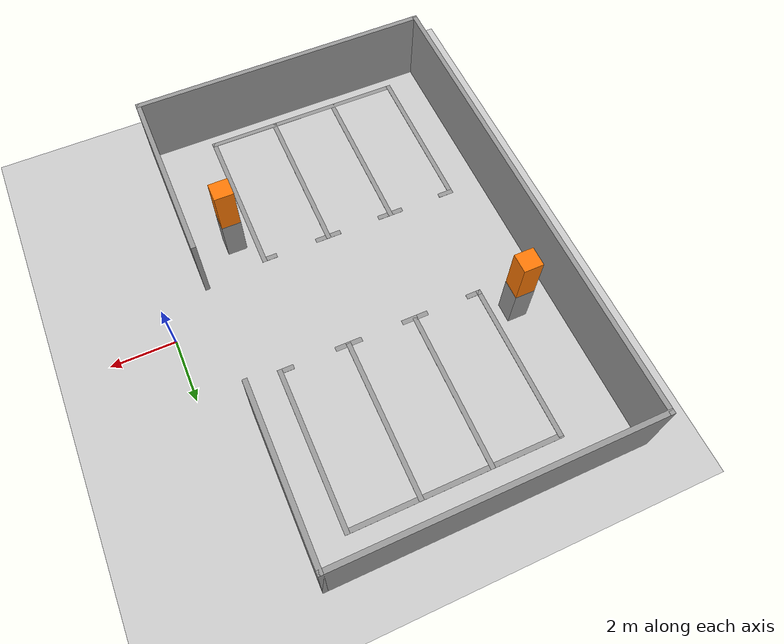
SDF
<sdf version="1.7">
 <world name="default">
  <light name="sun" type="directional">
   <pose>0 0 10 0 -0 0</pose>
   <diffuse>0.8 0.8 0.8 1</diffuse>
   <specular>0.2 0.2 0.2 1</specular>
   <attenuation>
    <range>1000</range>
    <constant>0.9</constant>
    <linear>0.01</linear>
    <quadratic>0.001</quadratic>
   </attenuation>
   <direction>-0.5 0.1 -0.9</direction>
   <spot><inner_angle>0</inner_angle><outer_angle>0</outer_angle><falloff>0</falloff></spot>
  </light>
  <model name="ground_plane">
   <static>1</static>
   <link name="link">
    <collision name="collision">
     <geometry><plane><normal>0 0 1</normal><size>100 100</size></plane></geometry>
     <surface><friction><ode><mu>100</mu><mu2>50</mu2></ode></friction></surface>
    </collision>
    <visual name="visual">
     <cast_shadows>0</cast_shadows>
     <geometry><plane><normal>0 0 1</normal><size>100 100</size></plane></geometry>
     <material>
      <script><uri>file://media/materials/scripts/gazebo.material</uri><name>Gazebo/Grey</name></script>
     </material>
    </visual>
   </link>
  </model>
  <gravity>0 0 -9.8</gravity>
  <magnetic_field>6e-06 2.3e-05 -4.2e-05</magnetic_field>
  <atmosphere type="adiabatic"/>
  <physics type="ode">
   <max_step_size>0.001</max_step_size>
   <real_time_factor>1</real_time_factor>
   <real_time_update_rate>1000</real_time_update_rate>
  </physics>
  <scene><ambient>0.4 0.4 0.4 1</ambient><background>0.7 0.7 0.7 1</background><shadows>1</shadows></scene>
  <audio><device>default</device></audio>
  <spherical_coordinates>
   <surface_model>EARTH_WGS84</surface_model>
   <latitude_deg>0</latitude_deg>
   <longitude_deg>0</longitude_deg>
   <elevation>0</elevation>
   <heading_deg>0</heading_deg>
  </spherical_coordinates>
  <model name="carport1">
   <pose>-6.20477 6.33377 0 0 -0 0</pose>
   <link name="Wall_105">
    <collision name="Wall_105_Collision">
     <geometry><box><size>0.61 0.6 1.5</size></box></geometry>
     <pose>0 0 0.75 0 -0 0</pose>
    </collision>
    <visual name="Wall_105_Visual">
     <pose>0 0 0.75 0 -0 0</pose>
     <geometry><box><size>0.61 0.6 1.5</size></box></geometry>
     <material>
      <script><uri>file://media/materials/scripts/gazebo.material</uri><name>Gazebo/Grey</name></script>
      <ambient>1 1 1 1</ambient>
     </material>
     <meta><layer>0</layer></meta>
    </visual>
    <pose>-3.47407 -3.2865 0 0 -0 0</pose>
   </link>
   <link name="Wall_116">
    <collision name="Wall_116_Collision">
     <geometry><box><size>5.1 0.15 0.005</size></box></geometry>
     <pose>0 0 0.0025 0 -0 0</pose>
    </collision>
    <visual name="Wall_116_Visual">
     <pose>0 0 0.0025 0 -0 0</pose>
     <geometry><box><size>5.1 0.15 0.005</size></box></geometry>
     <material>
      <script><uri>file://media/materials/scripts/gazebo.material</uri><name>Gazebo/Grey</name></script>
      <ambient>1 1 1 1</ambient>
     </material>
     <meta><layer>0</layer></meta>
    </visual>
    <pose>-2.82307 -1.7385 0 0 -0 1.5708</pose>
   </link>
   <link name="Wall_124">
    <collision name="Wall_124_Collision">
     <geometry><box><size>5.1 0.15 0.005</size></box></geometry>
     <pose>0 0 0.0025 0 -0 0</pose>
    </collision>
    <visual name="Wall_124_Visual">
     <pose>0 0 0.0025 0 -0 0</pose>
     <geometry><box><size>5.1 0.15 0.005</size></box></geometry>
     <material>
      <script><uri>file://media/materials/scripts/gazebo.material</uri><name>Gazebo/Grey</name></script>
      <ambient>1 1 1 1</ambient>
     </material>
     <meta><layer>0</layer></meta>
    </visual>
    <pose>3.70393 -1.7305 0 0 -0 1.5708</pose>
   </link>
   <link name="Wall_146">
    <collision name="Wall_146_Collision">
     <geometry><box><size>6.67711 0.15 0.005</size></box></geometry>
     <pose>0 0 0.0025 0 -0 0</pose>
    </collision>
    <visual name="Wall_146_Visual">
     <pose>0 0 0.0025 0 -0 0</pose>
     <geometry><box><size>6.67711 0.15 0.005</size></box></geometry>
     <material>
      <script><uri>file://media/materials/scripts/gazebo.material</uri><name>Gazebo/Grey</name></script>
      <ambient>1 1 1 1</ambient>
     </material>
     <meta><layer>0</layer></meta>
    </visual>
    <pose>0.440428 0.7405 0 0 -0 0.001226</pose>
   </link>
   <link name="Wall_168">
    <collision name="Wall_168_Collision">
     <geometry><box><size>5.1 0.15 0.005</size></box></geometry>
     <pose>0 0 0.0025 0 -0 0</pose>
    </collision>
    <visual name="Wall_168_Visual">
     <pose>0 0 0.0025 0 -0 0</pose>
     <geometry><box><size>5.1 0.15 0.005</size></box></geometry>
     <material>
      <script><uri>file://media/materials/scripts/gazebo.material</uri><name>Gazebo/Grey</name></script>
      <ambient>1 1 1 1</ambient>
     </material>
     <meta><layer>0</layer></meta>
    </visual>
    <pose>-0.64827 -1.73839 0 0 -0 1.57088</pose>
   </link>
   <link name="Wall_173">
    <collision name="Wall_173_Collision">
     <geometry><box><size>5.1 0.15 0.005</size></box></geometry>
     <pose>0 0 0.0025 0 -0 0</pose>
    </collision>
    <visual name="Wall_173_Visual">
     <pose>0 0 0.0025 0 -0 0</pose>
     <geometry><box><size>5.1 0.15 0.005</size></box></geometry>
     <material>
      <script><uri>file://media/materials/scripts/gazebo.material</uri><name>Gazebo/Grey</name></script>
      <ambient>1 1 1 1</ambient>
     </material>
     <meta><layer>0</layer></meta>
    </visual>
    <pose>1.52673 -1.73839 0 0 -0 1.57088</pose>
   </link>
   <link name="Wall_177">
    <collision name="Wall_177_Collision">
     <geometry><box><size>0.6 0.59 3</size></box></geometry>
     <pose>0 0 1.5 0 -0 0</pose>
    </collision>
    <visual name="Wall_177_Visual">
     <pose>0 0 1.5 0 -0 0</pose>
     <geometry><box><size>0.6 0.59 3</size></box></geometry>
     <material>
      <script><uri>file://media/materials/scripts/gazebo.material</uri><name>Gazebo/Grey</name></script>
      <ambient>0.996078 0.47451 0.0196078 1</ambient>
     </material>
     <meta><layer>0</layer></meta>
    </visual>
    <pose>-3.47407 -3.2865 0 0 -0 0</pose>
   </link>
   <link name="Wall_179">
    <collision name="Wall_179_Collision">
     <geometry><box><size>0.5 0.15 0.005</size></box></geometry>
     <pose>0 0 0.0025 0 -0 0</pose>
    </collision>
    <visual name="Wall_179_Visual">
     <pose>0 0 0.0025 0 -0 0</pose>
     <geometry><box><size>0.5 0.15 0.005</size></box></geometry>
     <material>
      <script><uri>file://media/materials/scripts/gazebo.material</uri><name>Gazebo/Grey</name></script>
      <ambient>1 1 1 1</ambient>
     </material>
     <meta><layer>0</layer></meta>
    </visual>
    <pose>-2.64807 -4.2135 0 0 -0 0</pose>
   </link>
   <link name="Wall_181">
    <collision name="Wall_181_Collision">
     <geometry><box><size>0.5 0.15 0.005</size></box></geometry>
     <pose>0 0 0.0025 0 -0 0</pose>
    </collision>
    <visual name="Wall_181_Visual">
     <pose>0 0 0.0025 0 -0 0</pose>
     <geometry><box><size>0.5 0.15 0.005</size></box></geometry>
     <material>
      <script><uri>file://media/materials/scripts/gazebo.material</uri><name>Gazebo/Grey</name></script>
      <ambient>1 1 1 1</ambient>
     </material>
     <meta><layer>0</layer></meta>
    </visual>
    <pose>-0.823072 -4.2135 0 0 -0 3.14159</pose>
   </link>
   <link name="Wall_183">
    <collision name="Wall_183_Collision">
     <geometry><box><size>0.5 0.15 0.005</size></box></geometry>
     <pose>0 0 0.0025 0 -0 0</pose>
    </collision>
    <visual name="Wall_183_Visual">
     <pose>0 0 0.0025 0 -0 0</pose>
     <geometry><box><size>0.5 0.15 0.005</size></box></geometry>
     <material>
      <script><uri>file://media/materials/scripts/gazebo.material</uri><name>Gazebo/Grey</name></script>
      <ambient>1 1 1 1</ambient>
     </material>
     <meta><layer>0</layer></meta>
    </visual>
    <pose>-0.473072 -4.2135 0 0 -0 0</pose>
   </link>
   <link name="Wall_185">
    <collision name="Wall_185_Collision">
     <geometry><box><size>0.5 0.15 0.005</size></box></geometry>
     <pose>0 0 0.0025 0 -0 0</pose>
    </collision>
    <visual name="Wall_185_Visual">
     <pose>0 0 0.0025 0 -0 0</pose>
     <geometry><box><size>0.5 0.15 0.005</size></box></geometry>
     <material>
      <script><uri>file://media/materials/scripts/gazebo.material</uri><name>Gazebo/Grey</name></script>
      <ambient>1 1 1 1</ambient>
     </material>
     <meta><layer>0</layer></meta>
    </visual>
    <pose>1.35193 -4.2135 0 0 -0 3.14159</pose>
   </link>
   <link name="Wall_187">
    <collision name="Wall_187_Collision">
     <geometry><box><size>0.5 0.15 0.005</size></box></geometry>
     <pose>0 0 0.0025 0 -0 0</pose>
    </collision>
    <visual name="Wall_187_Visual">
     <pose>0 0 0.0025 0 -0 0</pose>
     <geometry><box><size>0.5 0.15 0.005</size></box></geometry>
     <material>
      <script><uri>file://media/materials/scripts/gazebo.material</uri><name>Gazebo/Grey</name></script>
      <ambient>1 1 1 1</ambient>
     </material>
     <meta><layer>0</layer></meta>
    </visual>
    <pose>1.70193 -4.2135 0 0 -0 0</pose>
   </link>
   <link name="Wall_189">
    <collision name="Wall_189_Collision">
     <geometry><box><size>0.5 0.15 0.005</size></box></geometry>
     <pose>0 0 0.0025 0 -0 0</pose>
    </collision>
    <visual name="Wall_189_Visual">
     <pose>0 0 0.0025 0 -0 0</pose>
     <geometry><box><size>0.5 0.15 0.005</size></box></geometry>
     <material>
      <script><uri>file://media/materials/scripts/gazebo.material</uri><name>Gazebo/Grey</name></script>
      <ambient>1 1 1 1</ambient>
     </material>
     <meta><layer>0</layer></meta>
    </visual>
    <pose>3.52893 -4.2055 0 0 -0 3.14159</pose>
   </link>
   <static>1</static>
  </model>
  <model name="carport1_clone_1">
   <pose>-6.21435 -5.82324 0 0 -0 3.13851</pose>
   <link name="Wall_105">
    <collision name="Wall_105_Collision">
     <geometry><box><size>0.61 0.6 1.5</size></box></geometry>
     <pose>0 0 0.75 0 -0 0</pose>
    </collision>
    <visual name="Wall_105_Visual">
     <pose>0 0 0.75 0 -0 0</pose>
     <geometry><box><size>0.61 0.6 1.5</size></box></geometry>
     <material>
      <script><uri>file://media/materials/scripts/gazebo.material</uri><name>Gazebo/Grey</name></script>
      <ambient>1 1 1 1</ambient>
     </material>
     <meta><layer>0</layer></meta>
    </visual>
    <pose>-3.47407 -3.2865 0 0 -0 0</pose>
   </link>
   <link name="Wall_116">
    <collision name="Wall_116_Collision">
     <geometry><box><size>5.1 0.15 0.005</size></box></geometry>
     <pose>0 0 0.0025 0 -0 0</pose>
    </collision>
    <visual name="Wall_116_Visual">
     <pose>0 0 0.0025 0 -0 0</pose>
     <geometry><box><size>5.1 0.15 0.005</size></box></geometry>
     <material>
      <script><uri>file://media/materials/scripts/gazebo.material</uri><name>Gazebo/Grey</name></script>
      <ambient>1 1 1 1</ambient>
     </material>
     <meta><layer>0</layer></meta>
    </visual>
    <pose>-2.82307 -1.7385 0 0 -0 1.5708</pose>
   </link>
   <link name="Wall_124">
    <collision name="Wall_124_Collision">
     <geometry><box><size>5.1 0.15 0.005</size></box></geometry>
     <pose>0 0 0.0025 0 -0 0</pose>
    </collision>
    <visual name="Wall_124_Visual">
     <pose>0 0 0.0025 0 -0 0</pose>
     <geometry><box><size>5.1 0.15 0.005</size></box></geometry>
     <material>
      <script><uri>file://media/materials/scripts/gazebo.material</uri><name>Gazebo/Grey</name></script>
      <ambient>1 1 1 1</ambient>
     </material>
     <meta><layer>0</layer></meta>
    </visual>
    <pose>3.70393 -1.7305 0 0 -0 1.5708</pose>
   </link>
   <link name="Wall_146">
    <collision name="Wall_146_Collision">
     <geometry><box><size>6.67711 0.15 0.005</size></box></geometry>
     <pose>0 0 0.0025 0 -0 0</pose>
    </collision>
    <visual name="Wall_146_Visual">
     <pose>0 0 0.0025 0 -0 0</pose>
     <geometry><box><size>6.67711 0.15 0.005</size></box></geometry>
     <material>
      <script><uri>file://media/materials/scripts/gazebo.material</uri><name>Gazebo/Grey</name></script>
      <ambient>1 1 1 1</ambient>
     </material>
     <meta><layer>0</layer></meta>
    </visual>
    <pose>0.440428 0.7405 0 0 -0 0.001226</pose>
   </link>
   <link name="Wall_168">
    <collision name="Wall_168_Collision">
     <geometry><box><size>5.1 0.15 0.005</size></box></geometry>
     <pose>0 0 0.0025 0 -0 0</pose>
    </collision>
    <visual name="Wall_168_Visual">
     <pose>0 0 0.0025 0 -0 0</pose>
     <geometry><box><size>5.1 0.15 0.005</size></box></geometry>
     <material>
      <script><uri>file://media/materials/scripts/gazebo.material</uri><name>Gazebo/Grey</name></script>
      <ambient>1 1 1 1</ambient>
     </material>
     <meta><layer>0</layer></meta>
    </visual>
    <pose>-0.64827 -1.73839 0 0 -0 1.57088</pose>
   </link>
   <link name="Wall_173">
    <collision name="Wall_173_Collision">
     <geometry><box><size>5.1 0.15 0.005</size></box></geometry>
     <pose>0 0 0.0025 0 -0 0</pose>
    </collision>
    <visual name="Wall_173_Visual">
     <pose>0 0 0.0025 0 -0 0</pose>
     <geometry><box><size>5.1 0.15 0.005</size></box></geometry>
     <material>
      <script><uri>file://media/materials/scripts/gazebo.material</uri><name>Gazebo/Grey</name></script>
      <ambient>1 1 1 1</ambient>
     </material>
     <meta><layer>0</layer></meta>
    </visual>
    <pose>1.52673 -1.73839 0 0 -0 1.57088</pose>
   </link>
   <link name="Wall_177">
    <collision name="Wall_177_Collision">
     <geometry><box><size>0.6 0.59 3</size></box></geometry>
     <pose>0 0 1.5 0 -0 0</pose>
    </collision>
    <visual name="Wall_177_Visual">
     <pose>0 0 1.5 0 -0 0</pose>
     <geometry><box><size>0.6 0.59 3</size></box></geometry>
     <material>
      <script><uri>file://media/materials/scripts/gazebo.material</uri><name>Gazebo/Grey</name></script>
      <ambient>0.996078 0.47451 0.0196078 1</ambient>
     </material>
     <meta><layer>0</layer></meta>
    </visual>
    <pose>-3.47407 -3.2865 0 0 -0 0</pose>
   </link>
   <link name="Wall_179">
    <collision name="Wall_179_Collision">
     <geometry><box><size>0.5 0.15 0.005</size></box></geometry>
     <pose>0 0 0.0025 0 -0 0</pose>
    </collision>
    <visual name="Wall_179_Visual">
     <pose>0 0 0.0025 0 -0 0</pose>
     <geometry><box><size>0.5 0.15 0.005</size></box></geometry>
     <material>
      <script><uri>file://media/materials/scripts/gazebo.material</uri><name>Gazebo/Grey</name></script>
      <ambient>1 1 1 1</ambient>
     </material>
     <meta><layer>0</layer></meta>
    </visual>
    <pose>-2.64807 -4.2135 0 0 -0 0</pose>
   </link>
   <link name="Wall_181">
    <collision name="Wall_181_Collision">
     <geometry><box><size>0.5 0.15 0.005</size></box></geometry>
     <pose>0 0 0.0025 0 -0 0</pose>
    </collision>
    <visual name="Wall_181_Visual">
     <pose>0 0 0.0025 0 -0 0</pose>
     <geometry><box><size>0.5 0.15 0.005</size></box></geometry>
     <material>
      <script><uri>file://media/materials/scripts/gazebo.material</uri><name>Gazebo/Grey</name></script>
      <ambient>1 1 1 1</ambient>
     </material>
     <meta><layer>0</layer></meta>
    </visual>
    <pose>-0.823072 -4.2135 0 0 -0 3.14159</pose>
   </link>
   <link name="Wall_183">
    <collision name="Wall_183_Collision">
     <geometry><box><size>0.5 0.15 0.005</size></box></geometry>
     <pose>0 0 0.0025 0 -0 0</pose>
    </collision>
    <visual name="Wall_183_Visual">
     <pose>0 0 0.0025 0 -0 0</pose>
     <geometry><box><size>0.5 0.15 0.005</size></box></geometry>
     <material>
      <script><uri>file://media/materials/scripts/gazebo.material</uri><name>Gazebo/Grey</name></script>
      <ambient>1 1 1 1</ambient>
     </material>
     <meta><layer>0</layer></meta>
    </visual>
    <pose>-0.473072 -4.2135 0 0 -0 0</pose>
   </link>
   <link name="Wall_185">
    <collision name="Wall_185_Collision">
     <geometry><box><size>0.5 0.15 0.005</size></box></geometry>
     <pose>0 0 0.0025 0 -0 0</pose>
    </collision>
    <visual name="Wall_185_Visual">
     <pose>0 0 0.0025 0 -0 0</pose>
     <geometry><box><size>0.5 0.15 0.005</size></box></geometry>
     <material>
      <script><uri>file://media/materials/scripts/gazebo.material</uri><name>Gazebo/Grey</name></script>
      <ambient>1 1 1 1</ambient>
     </material>
     <meta><layer>0</layer></meta>
    </visual>
    <pose>1.35193 -4.2135 0 0 -0 3.14159</pose>
   </link>
   <link name="Wall_187">
    <collision name="Wall_187_Collision">
     <geometry><box><size>0.5 0.15 0.005</size></box></geometry>
     <pose>0 0 0.0025 0 -0 0</pose>
    </collision>
    <visual name="Wall_187_Visual">
     <pose>0 0 0.0025 0 -0 0</pose>
     <geometry><box><size>0.5 0.15 0.005</size></box></geometry>
     <material>
      <script><uri>file://media/materials/scripts/gazebo.material</uri><name>Gazebo/Grey</name></script>
      <ambient>1 1 1 1</ambient>
     </material>
     <meta><layer>0</layer></meta>
    </visual>
    <pose>1.70193 -4.2135 0 0 -0 0</pose>
   </link>
   <link name="Wall_189">
    <collision name="Wall_189_Collision">
     <geometry><box><size>0.5 0.15 0.005</size></box></geometry>
     <pose>0 0 0.0025 0 -0 0</pose>
    </collision>
    <visual name="Wall_189_Visual">
     <pose>0 0 0.0025 0 -0 0</pose>
     <geometry><box><size>0.5 0.15 0.005</size></box></geometry>
     <material>
      <script><uri>file://media/materials/scripts/gazebo.material</uri><name>Gazebo/Grey</name></script>
      <ambient>1 1 1 1</ambient>
     </material>
     <meta><layer>0</layer></meta>
    </visual>
    <pose>3.52893 -4.2055 0 0 -0 3.14159</pose>
   </link>
   <static>1</static>
  </model>
  <model name="wall_L">
   <pose>-5.55088 0.586859 0 0 -0 0</pose>
   <link name="Wall_12">
    <collision name="Wall_12_Collision">
     <geometry><box><size>9.75 0.15 2.5</size></box></geometry>
     <pose>0 0 1.25 0 -0 0</pose>
    </collision>
    <visual name="Wall_12_Visual">
     <pose>0 0 1.25 0 -0 0</pose>
     <geometry><box><size>9.75 0.15 2.5</size></box></geometry>
     <material>
      <script><uri>file://media/materials/scripts/gazebo.material</uri><name>Gazebo/Grey</name></script>
      <ambient>1 1 1 1</ambient>
     </material>
     <meta><layer>0</layer></meta>
    </visual>
    <pose>-0.675878 -7.575 0 0 -0 3.14159</pose>
   </link>
   <link name="Wall_14">
    <collision name="Wall_14_Collision">
     <geometry><box><size>15.25 0.15 2.5</size></box></geometry>
     <pose>0 0 1.25 0 -0 0</pose>
    </collision>
    <visual name="Wall_14_Visual">
     <pose>0 0 1.25 0 -0 0</pose>
     <geometry><box><size>15.25 0.15 2.5</size></box></geometry>
     <material>
      <script><uri>file://media/materials/scripts/gazebo.material</uri><name>Gazebo/Grey</name></script>
      <ambient>1 1 1 1</ambient>
     </material>
     <meta><layer>0</layer></meta>
    </visual>
    <pose>-5.47588 0.025 0 0 -0 -1.5708</pose>
   </link>
   <link name="Wall_16">
    <collision name="Wall_16_Collision">
     <geometry><box><size>5.75 0.15 2.5</size></box></geometry>
     <pose>0 0 1.25 0 -0 0</pose>
    </collision>
    <visual name="Wall_16_Visual">
     <pose>0 0 1.25 0 -0 0</pose>
     <geometry><box><size>5.75 0.15 2.5</size></box></geometry>
     <material>
      <script><uri>file://media/materials/scripts/gazebo.material</uri><name>Gazebo/Grey</name></script>
      <ambient>1 1 1 1</ambient>
     </material>
     <meta><layer>0</layer></meta>
    </visual>
    <pose>4.12412 -4.775 0 0 -0 1.5708</pose>
   </link>
   <link name="Wall_18">
    <collision name="Wall_18_Collision">
     <geometry><box><size>5.25 0.15 2.5</size></box></geometry>
     <pose>0 0 1.25 0 -0 0</pose>
    </collision>
    <visual name="Wall_18_Visual">
     <pose>0 0 1.25 0 -0 0</pose>
     <geometry><box><size>5.25 0.15 2.5</size></box></geometry>
     <material>
      <script><uri>file://media/materials/scripts/gazebo.material</uri><name>Gazebo/Grey</name></script>
      <ambient>1 1 1 1</ambient>
     </material>
     <meta><layer>0</layer></meta>
    </visual>
    <pose>4.12412 5.025 0 0 -0 -1.5708</pose>
   </link>
   <link name="Wall_7">
    <collision name="Wall_7_Collision">
     <geometry><box><size>9.75 0.15 2.5</size></box></geometry>
     <pose>0 0 1.25 0 -0 0</pose>
    </collision>
    <visual name="Wall_7_Visual">
     <pose>0 0 1.25 0 -0 0</pose>
     <geometry><box><size>9.75 0.15 2.5</size></box></geometry>
     <material>
      <script><uri>file://media/materials/scripts/gazebo.material</uri><name>Gazebo/Grey</name></script>
      <ambient>1 1 1 1</ambient>
     </material>
     <meta><layer>0</layer></meta>
    </visual>
    <pose>-0.675878 7.575 0 0 -0 0</pose>
   </link>
   <static>1</static>
  </model>
 </world>
</sdf>
